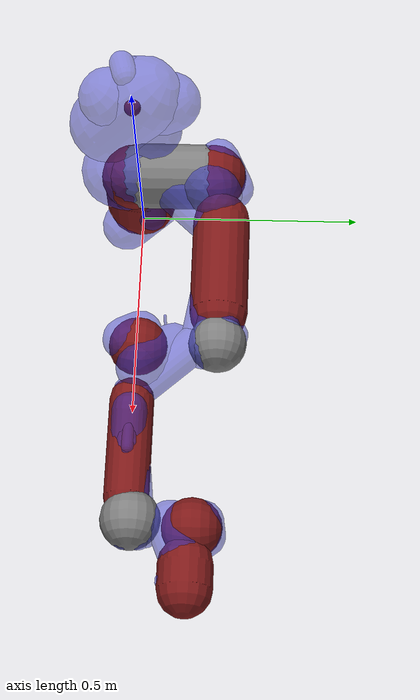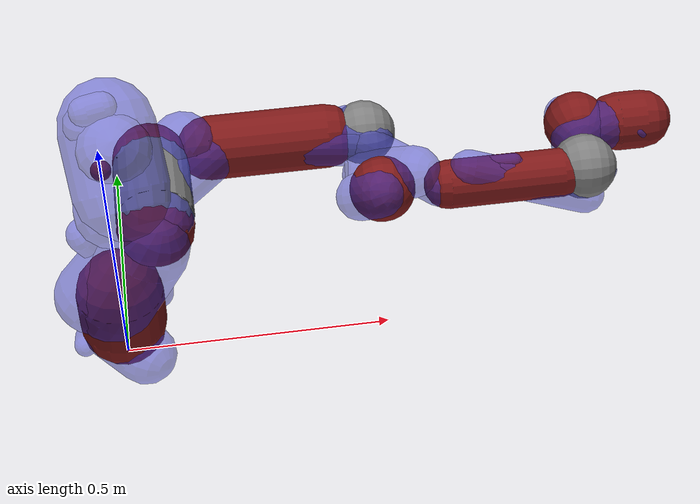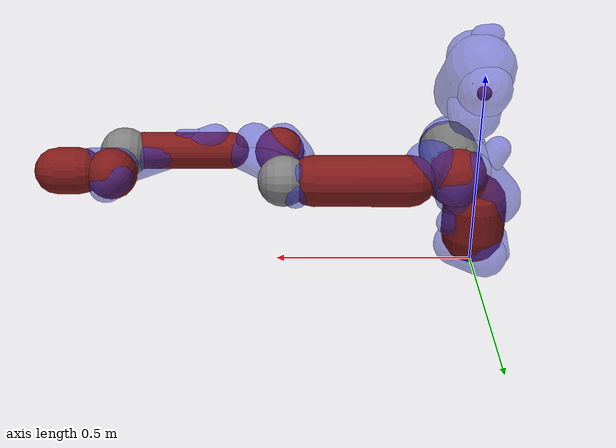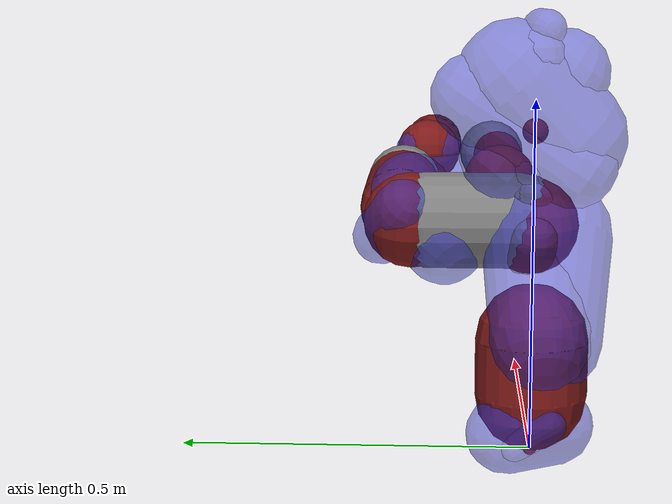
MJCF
<mujoco model="sawyer">
  <compiler angle="radian"/>
  <actuator>
    <motor ctrllimited="true" ctrlrange="-80.0 80.0" joint="right_j0" name="torq_right_j0"/>
    <motor ctrllimited="true" ctrlrange="-80.0 80.0" joint="right_j1" name="torq_right_j1"/>
    <motor ctrllimited="true" ctrlrange="-40.0 40.0" joint="right_j2" name="torq_right_j2"/>
    <motor ctrllimited="true" ctrlrange="-40.0 40.0" joint="right_j3" name="torq_right_j3"/>
    <motor ctrllimited="true" ctrlrange="-9.0 9.0" joint="right_j4" name="torq_right_j4"/>
    <motor ctrllimited="true" ctrlrange="-9.0 9.0" joint="right_j5" name="torq_right_j5"/>
    <motor ctrllimited="true" ctrlrange="-9.0 9.0" joint="right_j6" name="torq_right_j6"/>
  </actuator>
  <asset>
    <material name="Mtl1.017" specular="0.5" shininess="0.225" rgba="1.000000 0.000000 0.000000 1.000000"/>
    <material name="Mtl2.017" specular="0.5" shininess="0.225" rgba="0.286275 0.286275 0.286275 1.000000"/>
    <mesh name="base_0" file="obj_meshes/base/base_0.obj"/>
    <mesh name="base_1" file="obj_meshes/base/base_1.obj"/>
    <material name="Mtl1" specular="0.5" shininess="0.225" rgba="1.000000 0.000000 0.000000 1.000000"/>
    <material name="Mtl2" specular="0.5" shininess="0.225" rgba="0.000000 0.000000 0.000000 1.000000"/>
    <material name="Mtl4" specular="0.5" shininess="0.225" rgba="1.000000 1.000000 1.000000 1.000000"/>
    <material name="Mtl5" specular="0.5" shininess="0.225" rgba="0.870588 0.309804 0.086275 1.000000"/>
    <material name="Mtl6" specular="0.5" shininess="0.225" rgba="0.286275 0.286275 0.286275 1.000000"/>
    <material name="Mtl7" specular="0.5" shininess="0.225" rgba="0.698039 0.698039 0.698039 1.000000"/>
    <material name="Mtl8" specular="0.5" shininess="0.225" rgba="0.792157 0.819608 0.929412 1.000000"/>
    <material name="Mtl9" specular="0.5" shininess="0.225" rgba="0.250980 0.250980 0.250980 1.000000"/>
    <material name="Mtla" specular="0.5" shininess="0.225" rgba="0.000000 0.000000 1.000000 1.000000"/>
    <material name="Mtlb" specular="0.5" shininess="0.225" rgba="0.290196 0.290196 0.290196 1.000000"/>
    <mesh name="head_0" file="obj_meshes/head/head_0.obj"/>
    <mesh name="head_1" file="obj_meshes/head/head_1.obj" inertia="shell"/>
    <mesh name="head_2" file="obj_meshes/head/head_2.obj"/>
    <mesh name="head_3" file="obj_meshes/head/head_3.obj"/>
    <mesh name="head_4" file="obj_meshes/head/head_4.obj" inertia="shell"/>
    <mesh name="head_5" file="obj_meshes/head/head_5.obj"/>
    <mesh name="head_6" file="obj_meshes/head/head_6.obj"/>
    <mesh name="head_7" file="obj_meshes/head/head_7.obj"/>
    <mesh name="head_8" file="obj_meshes/head/head_8.obj"/>
    <mesh name="head_9" file="obj_meshes/head/head_9.obj"/>
    <material name="Mtl1.014" specular="0.5" shininess="0.225" rgba="0.286275 0.286275 0.286275 1.000000"/>
    <material name="Mtl2.014" specular="0.5" shininess="0.225" rgba="1.000000 1.000000 1.000000 1.000000"/>
    <material name="Mtl3.013" specular="0.5" shininess="0.225" rgba="0.168627 0.152941 0.141176 1.000000"/>
    <material name="Mtl4.012" specular="0.5" shininess="0.225" rgba="1.000000 0.403922 0.121569 1.000000"/>
    <material name="Mtl5.010" specular="0.5" shininess="0.225" rgba="1.000000 0.000000 0.000000 1.000000"/>
    <material name="Mtl6.008" specular="0.5" shininess="0.225" rgba="0.792157 0.819608 0.929412 1.000000"/>
    <material name="Mtl7.007" specular="0.5" shininess="0.225" rgba="0.250980 0.250980 0.250980 1.000000"/>
    <mesh name="l0_0" file="obj_meshes/l0/l0_0.obj"/>
    <mesh name="l0_1" file="obj_meshes/l0/l0_1.obj"/>
    <mesh name="l0_2" file="obj_meshes/l0/l0_2.obj"/>
    <mesh name="l0_3" file="obj_meshes/l0/l0_3.obj"/>
    <mesh name="l0_4" file="obj_meshes/l0/l0_4.obj"/>
    <mesh name="l0_5" file="obj_meshes/l0/l0_5.obj"/>
    <mesh name="l0_6" file="obj_meshes/l0/l0_6.obj"/>
    <material name="Mtl1.004" specular="0.5" shininess="0.225" rgba="1.000000 1.000000 1.000000 1.000000"/>
    <material name="Mtl2.004" specular="0.5" shininess="0.225" rgba="1.000000 0.000000 0.000000 1.000000"/>
    <material name="Mtl3.003" specular="0.5" shininess="0.225" rgba="0.286275 0.286275 0.286275 1.000000"/>
    <mesh name="l1_0" file="obj_meshes/l1/l1_0.obj"/>
    <mesh name="l1_1" file="obj_meshes/l1/l1_1.obj"/>
    <mesh name="l1_2" file="obj_meshes/l1/l1_2.obj"/>
    <material name="Mtl1.005" specular="0.5" shininess="0.225" rgba="1.000000 0.000000 0.000000 1.000000"/>
    <material name="Mtl2.005" specular="0.5" shininess="0.225" rgba="0.286275 0.286275 0.286275 1.000000"/>
    <material name="Mtl3.004" specular="0.5" shininess="0.225" rgba="1.000000 1.000000 1.000000 1.000000"/>
    <material name="Mtl4.003" specular="0.5" shininess="0.225" rgba="0.792157 0.819608 0.929412 1.000000"/>
    <material name="Mtl5.003" specular="0.5" shininess="0.225" rgba="0.105882 0.105882 0.105882 1.000000"/>
    <mesh name="l2_0" file="obj_meshes/l2/l2_0.obj"/>
    <mesh name="l2_1" file="obj_meshes/l2/l2_1.obj"/>
    <mesh name="l2_2" file="obj_meshes/l2/l2_2.obj"/>
    <mesh name="l2_3" file="obj_meshes/l2/l2_3.obj"/>
    <mesh name="l2_4" file="obj_meshes/l2/l2_4.obj"/>
    <material name="Mtl1.007" specular="0.5" shininess="0.225" rgba="0.290196 0.290196 0.290196 1.000000"/>
    <material name="Mtl2.007" specular="0.5" shininess="0.225" rgba="1.000000 1.000000 1.000000 1.000000"/>
    <material name="Mtl3.006" specular="0.5" shininess="0.225" rgba="1.000000 0.000000 0.000000 1.000000"/>
    <material name="Mtl4.005" specular="0.5" shininess="0.225" rgba="0.792157 0.819608 0.929412 1.000000"/>
    <mesh name="l3_0" file="obj_meshes/l3/l3_0.obj"/>
    <mesh name="l3_1" file="obj_meshes/l3/l3_1.obj"/>
    <mesh name="l3_2" file="obj_meshes/l3/l3_2.obj"/>
    <mesh name="l3_3" file="obj_meshes/l3/l3_3.obj"/>
    <material name="Mtl1.010" specular="0.5" shininess="0.225" rgba="0.286275 0.286275 0.286275 1.000000"/>
    <material name="Mtl2.010" specular="0.5" shininess="0.225" rgba="1.000000 0.000000 0.000000 1.000000"/>
    <material name="Mtl3.009" specular="0.5" shininess="0.225" rgba="0.000000 0.000000 0.000000 1.000000"/>
    <material name="Mtl4.008" specular="0.5" shininess="0.225" rgba="0.792157 0.819608 0.929412 1.000000"/>
    <material name="Mtl5.006" specular="0.5" shininess="0.225" rgba="1.000000 1.000000 1.000000 1.000000"/>
    <material name="Mtl6.004" specular="0.5" shininess="0.225" rgba="0.749020 0.749020 0.749020 1.000000"/>
    <material name="Mtl7.004" specular="0.5" shininess="0.225" rgba="0.290196 0.290196 0.290196 1.000000"/>
    <material name="Mtl8.002" specular="0.5" shininess="0.225" rgba="0.250980 0.250980 0.250980 1.000000"/>
    <mesh name="l4_0" file="obj_meshes/l4/l4_0.obj"/>
    <mesh name="l4_1" file="obj_meshes/l4/l4_1.obj"/>
    <mesh name="l4_2" file="obj_meshes/l4/l4_2.obj"/>
    <mesh name="l4_3" file="obj_meshes/l4/l4_3.obj"/>
    <mesh name="l4_4" file="obj_meshes/l4/l4_4.obj"/>
    <mesh name="l4_5" file="obj_meshes/l4/l4_5.obj"/>
    <mesh name="l4_6" file="obj_meshes/l4/l4_6.obj"/>
    <mesh name="l4_7" file="obj_meshes/l4/l4_7.obj"/>
    <material name="Mtl1_001" specular="0.5" shininess="0.225" rgba="1.000000 0.000000 0.000000 1.000000"/>
    <material name="Mtl2_001" specular="0.5" shininess="0.225" rgba="1.000000 1.000000 1.000000 1.000000"/>
    <material name="Mtl3_001" specular="0.5" shininess="0.225" rgba="0.286275 0.286275 0.286275 1.000000"/>
    <material name="Mtl4_001" specular="0.5" shininess="0.225" rgba="0.866667 0.905882 1.000000 1.000000"/>
    <material name="Mtl5_001" specular="0.5" shininess="0.225" rgba="0.501961 0.501961 0.501961 1.000000"/>
    <mesh name="l5_0" file="obj_meshes/l5/l5_0.obj"/>
    <mesh name="l5_1" file="obj_meshes/l5/l5_1.obj"/>
    <mesh name="l5_2" file="obj_meshes/l5/l5_2.obj"/>
    <mesh name="l5_3" file="obj_meshes/l5/l5_3.obj"/>
    <mesh name="l5_4" file="obj_meshes/l5/l5_4.obj"/>
    <material name="Mtl1.012" specular="0.5" shininess="0.225" rgba="0.298039 0.298039 0.298039 1.000000"/>
    <material name="Mtl2.012" specular="0.5" shininess="0.225" rgba="0.282353 0.282353 0.282353 1.000000"/>
    <material name="Mtl3.011" specular="0.5" shininess="0.225" rgba="0.286275 0.286275 0.286275 1.000000"/>
    <material name="Mtl4.010" specular="0.5" shininess="0.225" rgba="1.000000 0.000000 0.000000 1.000000"/>
    <material name="Mtl5.008" specular="0.5" shininess="0.225" rgba="1.000000 1.000000 1.000000 1.000000"/>
    <material name="Mtl6.006" specular="0.5" shininess="0.225" rgba="1.000000 0.403922 0.121569 1.000000"/>
    <mesh name="l6_0" file="obj_meshes/l6/l6_0.obj"/>
    <mesh name="l6_1" file="obj_meshes/l6/l6_1.obj"/>
    <mesh name="l6_2" file="obj_meshes/l6/l6_2.obj"/>
    <mesh name="l6_3" file="obj_meshes/l6/l6_3.obj"/>
    <mesh name="l6_4" file="obj_meshes/l6/l6_4.obj"/>
    <mesh name="l6_5" file="obj_meshes/l6/l6_5.obj"/>
  </asset>
  <worldbody>
    <body name="base" pos="0 0 0">
      <camera mode="fixed" name="robotview" pos="1.0 0 0.4" quat="0.653 0.271 0.271 0.653"/>
      <inertial diaginertia="0 0 0" mass="0" pos="0 0 0"/>
      <body name="right_arm_base_link" pos="0 0 0">
        <site name="right_center" pos="0 0 0" size="0.01" rgba="1 0.3 0.3 1" group="2"/>
        <inertial diaginertia="0.00740351 0.00681776 0.00672942" mass="2.0687" pos="-0.0006241 -2.8025e-05 0.065404" quat="-0.209285 0.674441 0.227335 0.670558"/>
        <geom material="Mtl2.017" type="capsule" contype="0" conaffinity="0" group="1" pos="-0.074964 0.000362 0.040178" quat="0.866815 0.498572 0.007575 0.000000" size="0.021228 0.029211" rgba="0.2 0.2 0.8 0.5"/>
        <geom material="Mtl1.017" type="capsule" contype="0" conaffinity="0" group="1" pos="0.002292 -0.000188 0.026955" quat="0.730752 -0.509409 -0.454427 0.000000" size="0.057459 0.047659" rgba="0.2 0.2 0.8 0.5"/>
        <geom pos="0 0 0.12" rgba="0.5 0.1 0.1 1" size="0.08 0.039999999999999994" type="capsule" name="base_col"/>
        <body name="right_l0" pos="0 0 0.08">
          <inertial diaginertia="0.0651588 0.0510944 0.0186218" mass="5.3213" pos="0.024366 0.010969 0.14363" quat="0.894823 0.00899958 -0.170275 0.412573"/>
          <joint axis="0 0 1" limited="true" name="right_j0" pos="0 0 0" range="-3.0503 3.0503"/>
          <geom material="Mtl7.007" type="capsule" contype="0" conaffinity="0" group="1" pos="-0.041595 0.015507 0.217845" quat="0.997673 -0.039366 0.055668 0.000000" size="0.000184 0.003706" rgba="0.2 0.2 0.8 0.5"/>
          <geom material="Mtl6.008" type="capsule" contype="0" conaffinity="0" group="1" pos="0.050096 -0.078800 0.173989" quat="0.521352 -0.144829 0.840962 0.000000" size="0.001334 0.014329" rgba="0.2 0.2 0.8 0.5"/>
          <geom material="Mtl5.010" type="capsule" contype="0" conaffinity="0" group="1" pos="0.015932 -0.004016 0.163913" quat="0.939086 -0.033183 0.342077 0.000000" size="0.071415 0.097391" rgba="0.2 0.2 0.8 0.5"/>
          <geom material="Mtl4.012" type="capsule" contype="0" conaffinity="0" group="1" pos="-0.064426 -0.018033 0.053969" quat="0.998935 -0.011245 0.044739 0.000000" size="0.001031 0.003216" rgba="0.2 0.2 0.8 0.5"/>
          <geom material="Mtl3.013" type="capsule" contype="0" conaffinity="0" group="1" pos="-0.065956 0.018788 0.041213" quat="0.987730 -0.140363 0.068474 0.000000" size="0.005650 0.003586" rgba="0.2 0.2 0.8 0.5"/>
          <geom material="Mtl2.014" type="capsule" contype="0" conaffinity="0" group="1" pos="0.009864 0.014754 0.135509" quat="0.268949 -0.232096 0.934771 0.000000" size="0.032026 0.111435" rgba="0.2 0.2 0.8 0.5"/>
          <geom material="Mtl1.014" type="capsule" contype="0" conaffinity="0" group="1" pos="0.024413 -0.030056 0.152095" quat="0.970621 0.060176 0.232969 0.000000" size="0.077918 0.078814" rgba="0.2 0.2 0.8 0.5"/>
          <geom pos="0.08 0 0.23" rgba="0.5 0.1 0.1 1" size="0.07" name="link0_collision"/>
          <body name="head" pos="0 0 0.2965">
            <inertial diaginertia="0.0118334 0.00827089 0.00496574" mass="1.5795" pos="0.0053207 -2.6549e-05 0.1021" quat="0.999993 7.08405e-05 -0.00359857 -0.000626247"/>
            <geom material="Mtlb" type="capsule" contype="0" conaffinity="0" group="1" pos="0.000075 0.000044 0.000769" quat="0.707099 -0.355666 0.611156 0.000000" size="0.024064 0.013793" rgba="0.2 0.2 0.8 0.5"/>
            <geom material="Mtla" type="capsule" contype="0" conaffinity="0" group="1" pos="0.000088 -0.000187 0.002750" quat="0.707107 -0.504297 0.495665 0.000000" size="0.023624 0.013594" rgba="0.2 0.2 0.8 0.5"/>
            <geom material="Mtl8" type="capsule" contype="0" conaffinity="0" group="1" pos="0.010383 0.022863 0.074991" quat="0.945220 0.320344 0.062764 0.000000" size="0.023618 0.046662" rgba="0.2 0.2 0.8 0.5"/>
            <geom material="Mtl9" type="capsule" contype="0" conaffinity="0" group="1" pos="0.013363 0.002365 0.102330" quat="0.952665 -0.304011 0.002536 0.000000" size="0.026793 0.052666" rgba="0.2 0.2 0.8 0.5"/>
            <geom material="Mtl7" type="capsule" contype="0" conaffinity="0" group="1" pos="0.002769 -0.009884 0.222500" quat="0.707107 0.190729 -0.680898 0.000000" size="0.025605 0.014942" rgba="0.2 0.2 0.8 0.5"/>
            <geom material="Mtl6" type="capsule" contype="0" conaffinity="0" group="1" pos="-0.008676 0.000004 0.112418" quat="0.014873 0.080589 0.996636 0.000000" size="0.040269 0.070713" rgba="0.2 0.2 0.8 0.5"/>
            <geom material="Mtl4" type="capsule" contype="0" conaffinity="0" group="1" pos="0.025139 -0.010273 0.110114" quat="0.363587 0.918222 0.157076 0.000000" size="0.083851 0.056663" rgba="0.2 0.2 0.8 0.5"/>
            <geom material="Mtl2" type="capsule" contype="0" conaffinity="0" group="1" pos="0.028529 0.000068 0.101051" quat="0.949819 0.312800 -0.000191 0.000000" size="0.063602 0.070639" rgba="0.2 0.2 0.8 0.5"/>
            <geom material="Mtl1" type="capsule" contype="0" conaffinity="0" group="1" pos="0.012021 0.014812 0.079544" quat="0.469943 0.881962 -0.035998 0.000000" size="0.063444 0.082800" rgba="0.2 0.2 0.8 0.5"/>
            <geom material="Mtl5" type="capsule" contype="0" conaffinity="0" group="1" pos="0.028531 -0.054830 0.102643" quat="0.935588 -0.353094 -0.000311 0.000000" size="0.000216 0.085889" rgba="0.2 0.2 0.8 0.5"/>
            <geom pos="0 0 0.08" rgba="0.5 0.1 0.1 1" size="0.018" name="head_collision"/>
            <body name="screen" pos="0.03 0 0.105" quat="0.5 0.5 0.5 0.5">
              <inertial diaginertia="1e-08 1e-08 1e-08" mass="0.0001" pos="0 0 0"/>
              <geom rgba="0.2 0.2 0.2 1" size="0.001" name="screen_collision"/>
            </body>
            <body name="head_camera" pos="0.0228027 0 0.216572" quat="0.342813 -0.618449 0.618449 -0.342813">
              <inertial diaginertia="0 0 0" mass="0" pos="0.0228027 0 0.216572" quat="0.342813 -0.618449 0.618449 -0.342813"/>
            </body>
          </body>
          <body name="right_torso_itb" pos="-0.055 0 0.22" quat="0.707107 0 -0.707107 0">
            <inertial diaginertia="1e-08 1e-08 1e-08" mass="0.0001" pos="0 0 0"/>
          </body>
          <body name="right_l1" pos="0.081 0.05 0.237" quat="0.5 -0.5 0.5 0.5">
            <inertial diaginertia="0.0224339 0.0221624 0.0097097" mass="4.505" pos="-0.0030849 -0.026811 0.092521" quat="0.424888 0.891987 0.132364 -0.0794296"/>
            <joint axis="0 0 1" limited="true" name="right_j1" pos="0 0 0" range="-3.8095 2.2736"/>
            <geom material="Mtl3.003" type="capsule" contype="0" conaffinity="0" group="1" pos="0.001417 0.011048 0.150493" quat="0.529913 -0.586543 -0.612503 0.000000" size="0.042096 0.037639" rgba="0.2 0.2 0.8 0.5"/>
            <geom material="Mtl2.004" type="capsule" contype="0" conaffinity="0" group="1" pos="0.000425 -0.023921 0.099896" quat="0.851409 0.410632 -0.326318 0.000000" size="0.060774 0.055462" rgba="0.2 0.2 0.8 0.5"/>
            <geom material="Mtl1.004" type="capsule" contype="0" conaffinity="0" group="1" pos="0.000003 -0.063377 0.071492" quat="0.927012 0.375032 -0.000393 0.000000" size="0.048576 0.093436" rgba="0.2 0.2 0.8 0.5"/>
            <geom pos="0 0 0.1225" rgba="0.5 0.1 0.1 1" size="0.07" name="link1_collision"/>
            <body name="right_l2" pos="0 -0.14 0.1425" quat="0.707107 0.707107 0 0">
              <inertial diaginertia="0.0257928 0.025506 0.00292515" mass="1.745" pos="-0.00016044 -0.014967 0.13582" quat="0.707831 -0.0524761 0.0516007 0.702537"/>
              <joint axis="0 0 1" limited="true" name="right_j2" pos="0 0 0" range="-3.0426 3.0426"/>
              <geom material="Mtl4.003" type="capsule" contype="0" conaffinity="0" group="1" pos="0.000648 0.008260 0.244411" quat="0.908672 0.137277 0.394297 0.000000" size="0.031990 0.023912" rgba="0.2 0.2 0.8 0.5"/>
              <geom material="Mtl5.003" type="capsule" contype="0" conaffinity="0" group="1" pos="-0.007253 0.009870 0.240611" quat="0.371561 -0.393894 0.840708 0.000000" size="0.031961 0.025623" rgba="0.2 0.2 0.8 0.5"/>
              <geom material="Mtl3.004" type="capsule" contype="0" conaffinity="0" group="1" pos="0.000124 -0.023835 0.151465" quat="0.075902 -0.996592 -0.032314 0.000000" size="0.037261 0.123057" rgba="0.2 0.2 0.8 0.5"/>
              <geom material="Mtl2.005" type="capsule" contype="0" conaffinity="0" group="1" pos="0.001322 0.020139 0.253469" quat="0.934894 0.155525 -0.319037 0.000000" size="0.034558 0.028066" rgba="0.2 0.2 0.8 0.5"/>
              <geom material="Mtl1.005" type="capsule" contype="0" conaffinity="0" group="1" pos="0.000298 -0.007835 0.153915" quat="0.090454 -0.994467 -0.053416 0.000000" size="0.042944 0.118371" rgba="0.2 0.2 0.8 0.5"/>
              <geom pos="0 0 0.08" rgba="0.5 0.1 0.1 1" size="0.06 0.11000000000000001" type="capsule" name="link2_collision"/>
              <body name="right_l3" pos="0 -0.042 0.26" quat="0.707107 -0.707107 0 0">
                <inertial diaginertia="0.0102404 0.0096997 0.00369622" mass="2.5097" pos="-0.0048135 -0.0281 -0.084154" quat="0.902999 0.385391 -0.0880901 0.168247"/>
                <joint axis="0 0 1" limited="true" name="right_j3" pos="0 0 0" range="-3.0439 3.0439"/>
                <geom material="Mtl4.005" type="capsule" contype="0" conaffinity="0" group="1" pos="0.000100 0.047727 -0.067210" quat="0.703083 0.008975 0.711051 0.000000" size="0.003112 0.025464" rgba="0.2 0.2 0.8 0.5"/>
                <geom material="Mtl3.006" type="capsule" contype="0" conaffinity="0" group="1" pos="-0.000884 -0.032188 -0.081478" quat="0.464086 0.723949 -0.510413 0.000000" size="0.047571 0.056454" rgba="0.2 0.2 0.8 0.5"/>
                <geom material="Mtl2.007" type="capsule" contype="0" conaffinity="0" group="1" pos="0.000007 -0.058316 -0.065685" quat="0.365813 0.930688 -0.000698 0.000000" size="0.039028 0.084163" rgba="0.2 0.2 0.8 0.5"/>
                <geom material="Mtl1.007" type="capsule" contype="0" conaffinity="0" group="1" pos="-0.000535 0.014533 -0.133137" quat="0.886215 -0.333608 0.321447 0.000000" size="0.044518 0.026580" rgba="0.2 0.2 0.8 0.5"/>
                <geom pos="0 -0.01 -0.12" rgba="0.5 0.1 0.1 1" size="0.06" name="link3_collision"/>
                <body name="right_l4" pos="0 -0.125 -0.1265" quat="0.707107 0.707107 0 0">
                  <inertial diaginertia="0.0136549 0.0135493 0.00127353" mass="1.1136" pos="-0.0018844 0.0069001 0.1341" quat="0.803612 0.031257 -0.0298334 0.593582"/>
                  <joint axis="0 0 1" limited="true" name="right_j4" pos="0 0 0" range="-2.9761 2.9761"/>
                  <geom material="Mtl8.002" type="capsule" contype="0" conaffinity="0" group="1" pos="-0.040901 -0.000547 0.079003" quat="0.005072 -0.980532 -0.196294 0.000000" size="0.005534 0.010319" rgba="0.2 0.2 0.8 0.5"/>
                  <geom material="Mtl7.004" type="capsule" contype="0" conaffinity="0" group="1" pos="-0.038452 0.004332 0.085721" quat="0.037171 0.808926 -0.586734 0.000000" size="0.011626 0.028996" rgba="0.2 0.2 0.8 0.5"/>
                  <geom material="Mtl6.004" type="capsule" contype="0" conaffinity="0" group="1" pos="-0.038227 -0.000312 0.082905" quat="0.999915 0.011130 0.006745 0.000000" size="0.011511 0.042948" rgba="0.2 0.2 0.8 0.5"/>
                  <geom material="Mtl5.006" type="capsule" contype="0" conaffinity="0" group="1" pos="-0.042797 0.000111 0.082994" quat="0.999993 0.002983 0.002413 0.000000" size="0.012504 0.041952" rgba="0.2 0.2 0.8 0.5"/>
                  <geom material="Mtl4.008" type="capsule" contype="0" conaffinity="0" group="1" pos="-0.037939 -0.000618 0.083092" quat="0.999918 0.010208 0.007706 0.000000" size="0.011482 0.047051" rgba="0.2 0.2 0.8 0.5"/>
                  <geom material="Mtl3.009" type="capsule" contype="0" conaffinity="0" group="1" pos="-0.014866 -0.002163 0.164334" quat="0.997258 -0.003463 0.073927 0.000000" size="0.024690 0.131761" rgba="0.2 0.2 0.8 0.5"/>
                  <geom material="Mtl2.010" type="capsule" contype="0" conaffinity="0" group="1" pos="0.001138 0.010124 0.156150" quat="0.056941 0.949616 -0.308200 0.000000" size="0.035748 0.127605" rgba="0.2 0.2 0.8 0.5"/>
                  <geom material="Mtl1.010" type="capsule" contype="0" conaffinity="0" group="1" pos="0.010758 -0.004055 0.151916" quat="0.983101 0.014774 0.182468 0.000000" size="0.035718 0.118914" rgba="0.2 0.2 0.8 0.5"/>
                  <geom pos="0 0 0.11" rgba="0.5 0.1 0.1 1" size="0.045 0.105" type="capsule" name="link4_collision"/>
                  <body name="right_arm_itb" pos="-0.055 0 0.075" quat="0.707107 0 -0.707107 0">
                    <inertial diaginertia="1e-08 1e-08 1e-08" mass="0.0001" pos="0 0 0"/>
                  </body>
                  <body name="right_l5" pos="0 0.031 0.275" quat="0.707107 -0.707107 0 0">
                    <inertial diaginertia="0.00474131 0.00422857 0.00190672" mass="1.5625" pos="0.0061133 -0.023697 0.076416" quat="0.404076 0.9135 0.0473125 0.00158335"/>
                    <joint axis="0 0 1" limited="true" name="right_j5" pos="0 0 0" range="-2.9761 2.9761" damping="0.2"/>
                    <geom material="Mtl5_001" type="capsule" contype="0" conaffinity="0" group="1" pos="0.045314 -0.036965 0.080112" quat="0.893519 -0.449023 0.001457 0.000000" size="0.007378 0.008226" rgba="0.2 0.2 0.8 0.5"/>
                    <geom material="Mtl4_001" type="capsule" contype="0" conaffinity="0" group="1" pos="-0.002685 -0.003767 0.009800" quat="0.706463 0.416384 0.572306 0.000000" size="0.025973 0.014476" rgba="0.2 0.2 0.8 0.5"/>
                    <geom material="Mtl2_001" type="capsule" contype="0" conaffinity="0" group="1" pos="0.021258 -0.015494 0.033912" quat="0.940217 0.201421 0.274630 0.000000" size="0.015578 0.049910" rgba="0.2 0.2 0.8 0.5"/>
                    <geom material="Mtl1_001" type="capsule" contype="0" conaffinity="0" group="1" pos="-0.000840 -0.020848 0.069193" quat="0.825626 0.555318 -0.099818 0.000000" size="0.047048 0.033229" rgba="0.2 0.2 0.8 0.5"/>
                    <geom material="Mtl3_001" type="capsule" contype="0" conaffinity="0" group="1" pos="0.007827 0.002132 0.123670" quat="0.657560 -0.577335 -0.484045 0.000000" size="0.040831 0.015612" rgba="0.2 0.2 0.8 0.5"/>
                    <geom pos="0 0 0.1" rgba="0.5 0.1 0.1 1" size="0.06" name="link5_collision"/>
                    <body name="right_hand_camera" pos="0.039552 -0.033 0.0695" quat="0.707107 0 0.707107 0">
                      <inertial diaginertia="0 0 0" mass="0" pos="0.039552 -0.033 0.0695" quat="0.707107 0 0.707107 0"/>
                    </body>
                    <body name="right_wrist" pos="0 0 0.10541" quat="0.707107 0.707107 0 0">
                      <inertial diaginertia="0 0 0" mass="0" pos="0 0 0.10541" quat="0.707107 0.707107 0 0"/>
                    </body>
                    <body name="right_l6" pos="0 -0.11 0.1053" quat="0.0616248 0.06163 -0.704416 0.704416">
                      <inertial diaginertia="0.000360258 0.000311068 0.000214974" mass="0.3292" pos="-8.0726e-06 0.0085838 -0.0049566" quat="0.479044 0.515636 -0.513069 0.491322"/>
                      <joint axis="0 0 1" limited="true" name="right_j6" pos="0 0 0" range="-4.7124 4.7124" damping="0.1"/>
                      <geom material="Mtl6.006" type="capsule" contype="0" conaffinity="0" group="1" pos="-0.003310 0.066661 0.000382" quat="0.021534 -0.922168 0.386189 0.000000" size="0.001603 0.004778" rgba="0.2 0.2 0.8 0.5"/>
                      <geom material="Mtl5.008" type="capsule" contype="0" conaffinity="0" group="1" pos="0.000001 0.066135 0.000601" quat="0.365523 -0.036718 0.930078 0.000000" size="0.006590 0.004796" rgba="0.2 0.2 0.8 0.5"/>
                      <geom material="Mtl4.010" type="capsule" contype="0" conaffinity="0" group="1" pos="0.003502 0.066633 0.000640" quat="0.285129 0.020326 0.958274 0.000000" size="0.001908 0.004593" rgba="0.2 0.2 0.8 0.5"/>
                      <geom material="Mtl3.011" type="capsule" contype="0" conaffinity="0" group="1" pos="-0.000000 -0.000000 -0.036475" quat="0.707086 -0.561381 -0.429978 0.000000" size="0.024622 0.015366" rgba="0.2 0.2 0.8 0.5"/>
                      <geom material="Mtl2.012" type="capsule" contype="0" conaffinity="0" group="1" pos="-0.001604 0.012274 -0.025556" quat="0.697422 -0.591882 -0.404077 0.000000" size="0.028738 0.023632" rgba="0.2 0.2 0.8 0.5"/>
                      <geom material="Mtl1.012" type="capsule" contype="0" conaffinity="0" group="1" pos="-0.001785 0.012908 -0.004617" quat="0.594018 -0.578059 -0.559455 0.000000" size="0.031337 0.023258" rgba="0.2 0.2 0.8 0.5"/>
                      <geom pos="0 0.015 -0.01" rgba="0.5 0.1 0.1 1" size="0.055 0.025" type="capsule" name="link6_collision"/>
                      <body name="right_hand" pos="0 0 0.024" quat="0.707105 0 0 0.707108">
                        <camera mode="fixed" name="eye_in_hand" pos="0.05 0 0" quat="0 0.707108 0.707108 0" fovy="75"/>
                      </body>
                    </body>
                  </body>
                  <body name="right_l4_2" pos="0 0 0">
                    <inertial diaginertia="1e-08 1e-08 1e-08" mass="1e-08" pos="1e-08 1e-08 1e-08" quat="0.820473 0.339851 -0.17592 0.424708"/>
                    <geom pos="0 0.01 0.26" size="0.06" name="right_l4_2"/>
                  </body>
                </body>
              </body>
              <body name="right_l2_2" pos="0 0 0">
                <inertial diaginertia="1e-08 1e-08 1e-08" mass="1e-08" pos="1e-08 1e-08 1e-08" quat="0.820473 0.339851 -0.17592 0.424708"/>
                <geom pos="0 0 0.26" size="0.06" name="right_l2_2"/>
              </body>
            </body>
            <body name="right_l1_2" pos="0 0 0">
              <inertial diaginertia="1e-08 1e-08 1e-08" mass="1e-08" pos="1e-08 1e-08 1e-08" quat="0.820473 0.339851 -0.17592 0.424708"/>
              <geom pos="0 0 0.035" size="0.07 0.07" type="capsule" name="right_l1_2"/>
            </body>
          </body>
        </body>
      </body>
    </body>
  </worldbody>
</mujoco>
